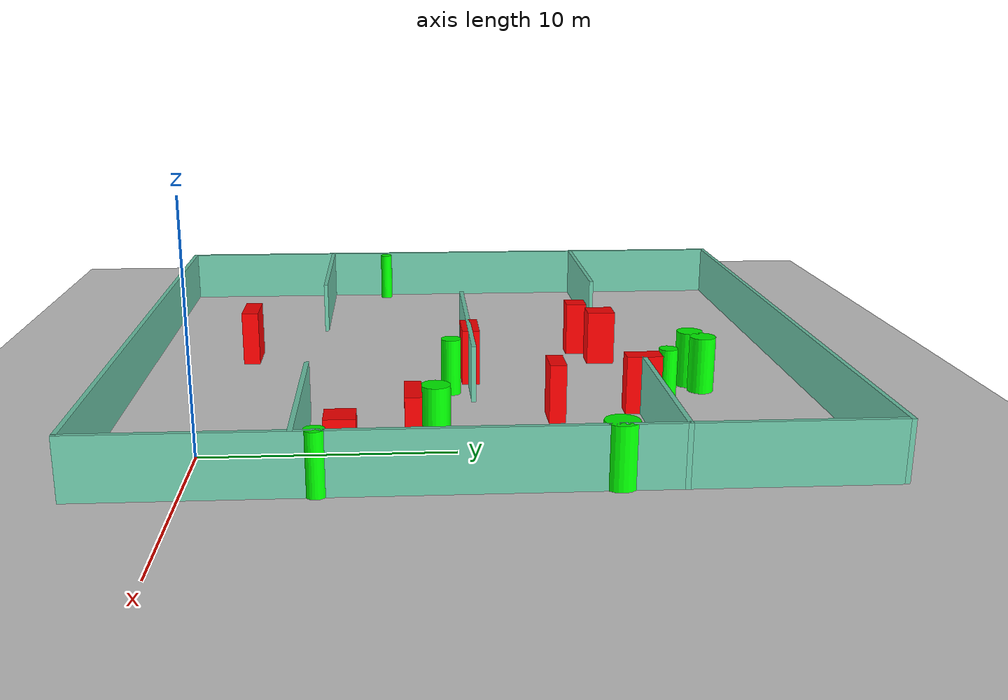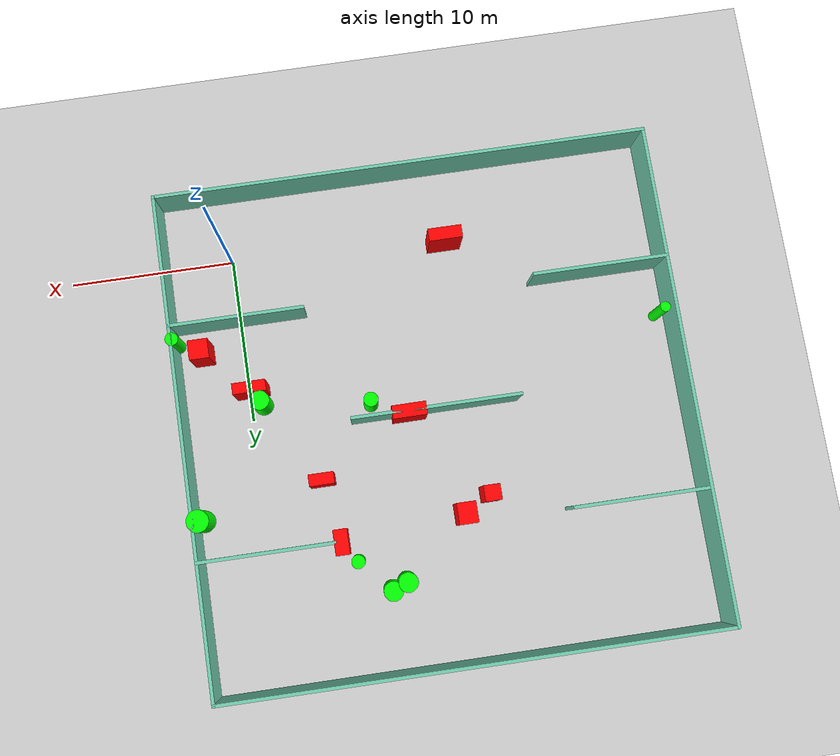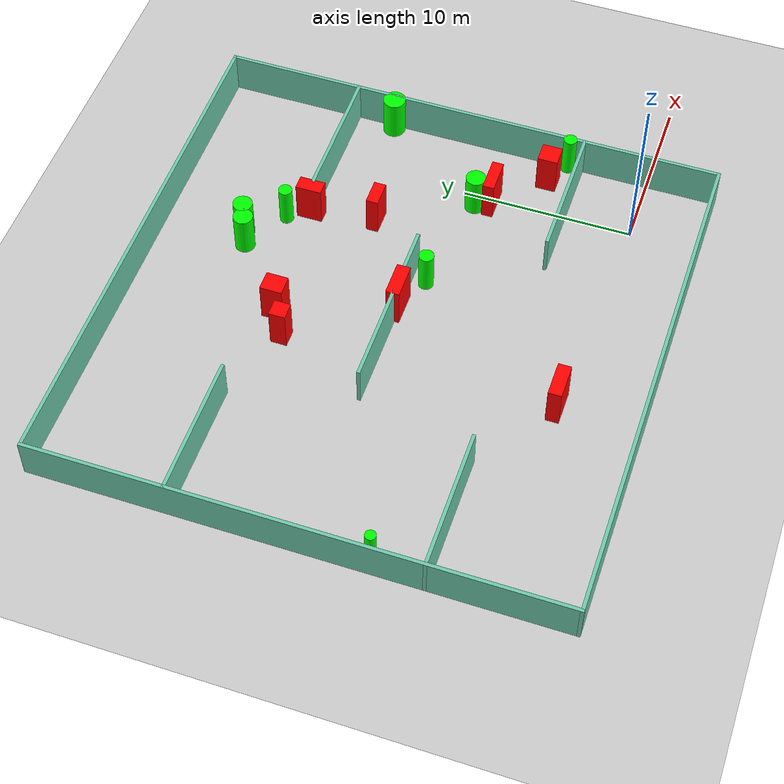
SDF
<sdf version="1.7">
 <world name="default">
  <light name="sun" type="directional">
   <pose>0 0 10 0 -0 0</pose>
   <diffuse>0.8 0.8 0.8 1</diffuse>
   <specular>0.2 0.2 0.2 1</specular>
   <attenuation>
    <range>1000</range>
    <constant>0.9</constant>
    <linear>0.01</linear>
    <quadratic>0.001</quadratic>
   </attenuation>
   <direction>-0.5 0.1 -0.9</direction>
   <spot><inner_angle>0</inner_angle><outer_angle>0</outer_angle><falloff>0</falloff></spot>
  </light>
  <model name="ground_plane">
   <static>1</static>
   <link name="link">
    <collision name="collision">
     <geometry><plane><normal>0 0 1</normal><size>100 100</size></plane></geometry>
     <surface>
      <contact><collide_bitmask>65535</collide_bitmask></contact>
      <friction><ode><mu>100</mu><mu2>50</mu2></ode></friction>
     </surface>
    </collision>
    <visual name="visual">
     <cast_shadows>0</cast_shadows>
     <geometry><plane><normal>0 0 1</normal><size>100 100</size></plane></geometry>
     <material>
      <script><uri>file://media/materials/scripts/gazebo.material</uri><name>Gazebo/Grey</name></script>
     </material>
    </visual>
   </link>
  </model>
  <gravity>0 0 -9.8</gravity>
  <magnetic_field>6e-06 2.3e-05 -4.2e-05</magnetic_field>
  <atmosphere type="adiabatic"/>
  <physics type="ode">
   <max_step_size>0.001</max_step_size>
   <real_time_factor>1</real_time_factor>
   <real_time_update_rate>1000</real_time_update_rate>
  </physics>
  <scene><ambient>0.4 0.4 0.4 1</ambient><background>0.7 0.7 0.7 1</background><shadows>1</shadows></scene>
  <spherical_coordinates>
   <surface_model>EARTH_WGS84</surface_model>
   <latitude_deg>0</latitude_deg>
   <longitude_deg>0</longitude_deg>
   <elevation>0</elevation>
   <heading_deg>0</heading_deg>
  </spherical_coordinates>
  <model name="my_base_walls">
   <link name="Wall_10">
    <collision name="Wall_10_Collision">
     <geometry><box><size>8.2 0.2 2.5</size></box></geometry>
     <pose>0 0 1.25 0 -0 0</pose>
    </collision>
    <visual name="Wall_10_Visual">
     <pose>0 0 1.25 0 -0 0</pose>
     <geometry><box><size>8.2 0.2 2.5</size></box></geometry>
     <material>
      <script><uri>file://media/materials/scripts/gazebo.material</uri><name>Gazebo/Grey</name></script>
      <ambient>0.435294 0.796078 0.67451 1</ambient>
     </material>
     <meta><layer>0</layer></meta>
    </visual>
    <pose>-11 -7 0 0 -0 0</pose>
   </link>
   <link name="Wall_12">
    <collision name="Wall_12_Collision">
     <geometry><box><size>8.2 0.2 2.5</size></box></geometry>
     <pose>0 0 1.25 0 -0 0</pose>
    </collision>
    <visual name="Wall_12_Visual">
     <pose>0 0 1.25 0 -0 0</pose>
     <geometry><box><size>8.2 0.2 2.5</size></box></geometry>
     <material>
      <script><uri>file://media/materials/scripts/gazebo.material</uri><name>Gazebo/Grey</name></script>
      <ambient>0.435294 0.796078 0.67451 1</ambient>
     </material>
     <meta><layer>0</layer></meta>
    </visual>
    <pose>-11 7 0 0 -0 0</pose>
   </link>
   <link name="Wall_14">
    <collision name="Wall_14_Collision">
     <geometry><box><size>8.2 0.2 2.5</size></box></geometry>
     <pose>0 0 1.25 0 -0 0</pose>
    </collision>
    <visual name="Wall_14_Visual">
     <pose>0 0 1.25 0 -0 0</pose>
     <geometry><box><size>8.2 0.2 2.5</size></box></geometry>
     <material>
      <script><uri>file://media/materials/scripts/gazebo.material</uri><name>Gazebo/Grey</name></script>
      <ambient>0.435294 0.796078 0.67451 1</ambient>
     </material>
     <meta><layer>0</layer></meta>
    </visual>
    <pose>11 7 0 0 -0 3.14159</pose>
   </link>
   <link name="Wall_16">
    <collision name="Wall_16_Collision">
     <geometry><box><size>10.2 0.2 2.5</size></box></geometry>
     <pose>0 0 1.25 0 -0 0</pose>
    </collision>
    <visual name="Wall_16_Visual">
     <pose>0 0 1.25 0 -0 0</pose>
     <geometry><box><size>10.2 0.2 2.5</size></box></geometry>
     <material>
      <script><uri>file://media/materials/scripts/gazebo.material</uri><name>Gazebo/Grey</name></script>
      <ambient>0.435294 0.796078 0.67451 1</ambient>
     </material>
     <meta><layer>0</layer></meta>
    </visual>
    <pose>0 0 0 0 -0 3.14159</pose>
   </link>
   <link name="Wall_2">
    <collision name="Wall_2_Collision">
     <geometry><box><size>30.2 0.2 2.5</size></box></geometry>
     <pose>0 0 1.25 0 -0 0</pose>
    </collision>
    <visual name="Wall_2_Visual">
     <pose>0 0 1.25 0 -0 0</pose>
     <geometry><box><size>30.2 0.2 2.5</size></box></geometry>
     <material>
      <script><uri>file://media/materials/scripts/gazebo.material</uri><name>Gazebo/Grey</name></script>
      <ambient>0.435294 0.796078 0.67451 1</ambient>
     </material>
     <meta><layer>0</layer></meta>
    </visual>
    <pose>0 -15 0 0 -0 3.14159</pose>
   </link>
   <link name="Wall_3">
    <collision name="Wall_3_Collision">
     <geometry><box><size>30.2 0.2 2.5</size></box></geometry>
     <pose>0 0 1.25 0 -0 0</pose>
    </collision>
    <visual name="Wall_3_Visual">
     <pose>0 0 1.25 0 -0 0</pose>
     <geometry><box><size>30.2 0.2 2.5</size></box></geometry>
     <material>
      <script><uri>file://media/materials/scripts/gazebo.material</uri><name>Gazebo/Grey</name></script>
      <ambient>0.435294 0.796078 0.67451 1</ambient>
     </material>
     <meta><layer>0</layer></meta>
    </visual>
    <pose>-15 0 0 0 -0 1.5708</pose>
   </link>
   <link name="Wall_4">
    <collision name="Wall_4_Collision">
     <geometry><box><size>30.2 0.2 2.5</size></box></geometry>
     <pose>0 0 1.25 0 -0 0</pose>
    </collision>
    <visual name="Wall_4_Visual">
     <pose>0 0 1.25 0 -0 0</pose>
     <geometry><box><size>30.2 0.2 2.5</size></box></geometry>
     <material>
      <script><uri>file://media/materials/scripts/gazebo.material</uri><name>Gazebo/Grey</name></script>
      <ambient>0.435294 0.796078 0.67451 1</ambient>
     </material>
     <meta><layer>0</layer></meta>
    </visual>
    <pose>0 15 0 0 -0 0</pose>
   </link>
   <link name="Wall_6">
    <collision name="Wall_6_Collision">
     <geometry><box><size>30.2 0.2 2.5</size></box></geometry>
     <pose>0 0 1.25 0 -0 0</pose>
    </collision>
    <visual name="Wall_6_Visual">
     <pose>0 0 1.25 0 -0 0</pose>
     <geometry><box><size>30.2 0.2 2.5</size></box></geometry>
     <material>
      <script><uri>file://media/materials/scripts/gazebo.material</uri><name>Gazebo/Grey</name></script>
      <ambient>0.435294 0.796078 0.67451 1</ambient>
     </material>
     <meta><layer>0</layer></meta>
    </visual>
    <pose>15 0 0 0 -0 1.5708</pose>
   </link>
   <link name="Wall_8">
    <collision name="Wall_8_Collision">
     <geometry><box><size>8.2 0.2 2.5</size></box></geometry>
     <pose>0 0 1.25 0 -0 0</pose>
    </collision>
    <visual name="Wall_8_Visual">
     <pose>0 0 1.25 0 -0 0</pose>
     <geometry><box><size>8.2 0.2 2.5</size></box></geometry>
     <material>
      <script><uri>file://media/materials/scripts/gazebo.material</uri><name>Gazebo/Grey</name></script>
      <ambient>0.435294 0.796078 0.67451 1</ambient>
     </material>
     <meta><layer>0</layer></meta>
    </visual>
    <pose>11 -7 0 0 -0 3.14159</pose>
   </link>
   <static>1</static>
   <pose>-11 11 0 0 -0 0</pose>
  </model>
  <model name="cylinder1">
   <static>1</static>
   <link name="link">
    <inertial>
     <mass>1</mass>
     <inertia><ixx>0.5</ixx><ixy>0</ixy><ixz>0</ixz><iyy>0.5</iyy><iyz>0</iyz><izz>1</izz></inertia>
    </inertial>
    <collision name="collision">
     <geometry><cylinder><radius>0.5727420548945166</radius><length>2.5</length></cylinder></geometry>
    </collision>
    <visual name="visual">
     <geometry><cylinder><radius>0.5727420548945166</radius><length>2.5</length></cylinder></geometry>
     <material>
      <ambient>0 1 0 1</ambient>
      <diffuse>0 1 0 1</diffuse>
      <specular>0.1 0.1 0.1 1</specular>
      <emissive>0 0 0 0</emissive>
     </material>
    </visual>
   </link>
   <pose>-6.943790081805105 21.201189818320227 1.25 0 0 0</pose>
  </model>
  <model name="cylinder2">
   <static>1</static>
   <link name="link">
    <inertial>
     <mass>1</mass>
     <inertia><ixx>0.5</ixx><ixy>0</ixy><ixz>0</ixz><iyy>0.5</iyy><iyz>0</iyz><izz>1</izz></inertia>
    </inertial>
    <collision name="collision">
     <geometry><cylinder><radius>0.3079951399885495</radius><length>2.5</length></cylinder></geometry>
    </collision>
    <visual name="visual">
     <geometry><cylinder><radius>0.3079951399885495</radius><length>2.5</length></cylinder></geometry>
     <material>
      <ambient>0 1 0 1</ambient>
      <diffuse>0 1 0 1</diffuse>
      <specular>0.1 0.1 0.1 1</specular>
      <emissive>0 0 0 0</emissive>
     </material>
    </visual>
   </link>
   <pose>-25.322887637222827 7.103625627738392 1.25 0 0 0</pose>
  </model>
  <model name="cylinder3">
   <static>1</static>
   <link name="link">
    <inertial>
     <mass>1</mass>
     <inertia><ixx>0.5</ixx><ixy>0</ixy><ixz>0</ixz><iyy>0.5</iyy><iyz>0</iyz><izz>1</izz></inertia>
    </inertial>
    <collision name="collision">
     <geometry><cylinder><radius>0.43592483757378986</radius><length>2.5</length></cylinder></geometry>
    </collision>
    <visual name="visual">
     <geometry><cylinder><radius>0.43592483757378986</radius><length>2.5</length></cylinder></geometry>
     <material>
      <ambient>0 1 0 1</ambient>
      <diffuse>0 1 0 1</diffuse>
      <specular>0.1 0.1 0.1 1</specular>
      <emissive>0 0 0 0</emissive>
     </material>
    </visual>
   </link>
   <pose>-7.240205649736467 10.076082905791338 1.25 0 0 0</pose>
  </model>
  <model name="cylinder4">
   <static>1</static>
   <link name="link">
    <inertial>
     <mass>1</mass>
     <inertia><ixx>0.5</ixx><ixy>0</ixy><ixz>0</ixz><iyy>0.5</iyy><iyz>0</iyz><izz>1</izz></inertia>
    </inertial>
    <collision name="collision">
     <geometry><cylinder><radius>0.6653747920859578</radius><length>2.5</length></cylinder></geometry>
    </collision>
    <visual name="visual">
     <geometry><cylinder><radius>0.6653747920859578</radius><length>2.5</length></cylinder></geometry>
     <material>
      <ambient>0 1 0 1</ambient>
      <diffuse>0 1 0 1</diffuse>
      <specular>0.1 0.1 0.1 1</specular>
      <emissive>0 0 0 0</emissive>
     </material>
    </visual>
   </link>
   <pose>3.655220060047789 15.648036927315964 1.25 0 0 0</pose>
  </model>
  <model name="cylinder5">
   <static>1</static>
   <link name="link">
    <inertial>
     <mass>1</mass>
     <inertia><ixx>0.5</ixx><ixy>0</ixy><ixz>0</ixz><iyy>0.5</iyy><iyz>0</iyz><izz>1</izz></inertia>
    </inertial>
    <collision name="collision">
     <geometry><cylinder><radius>0.3931641595358518</radius><length>2.5</length></cylinder></geometry>
    </collision>
    <visual name="visual">
     <geometry><cylinder><radius>0.3931641595358518</radius><length>2.5</length></cylinder></geometry>
     <material>
      <ambient>0 1 0 1</ambient>
      <diffuse>0 1 0 1</diffuse>
      <specular>0.1 0.1 0.1 1</specular>
      <emissive>0 0 0 0</emissive>
     </material>
    </visual>
   </link>
   <pose>3.899769670948821 4.8260238907514115 1.25 0 0 0</pose>
  </model>
  <model name="cylinder6">
   <static>1</static>
   <link name="link">
    <inertial>
     <mass>1</mass>
     <inertia><ixx>0.5</ixx><ixy>0</ixy><ixz>0</ixz><iyy>0.5</iyy><iyz>0</iyz><izz>1</izz></inertia>
    </inertial>
    <collision name="collision">
     <geometry><cylinder><radius>0.5795052914556256</radius><length>2.5</length></cylinder></geometry>
    </collision>
    <visual name="visual">
     <geometry><cylinder><radius>0.5795052914556256</radius><length>2.5</length></cylinder></geometry>
     <material>
      <ambient>0 1 0 1</ambient>
      <diffuse>0 1 0 1</diffuse>
      <specular>0.1 0.1 0.1 1</specular>
      <emissive>0 0 0 0</emissive>
     </material>
    </visual>
   </link>
   <pose>-0.7783206058522225 9.189408164243744 1.25 0 0 0</pose>
  </model>
  <model name="cylinder7">
   <static>1</static>
   <link name="link">
    <inertial>
     <mass>1</mass>
     <inertia><ixx>0.5</ixx><ixy>0</ixy><ixz>0</ixz><iyy>0.5</iyy><iyz>0</iyz><izz>1</izz></inertia>
    </inertial>
    <collision name="collision">
     <geometry><cylinder><radius>0.5758224819653165</radius><length>2.5</length></cylinder></geometry>
    </collision>
    <visual name="visual">
     <geometry><cylinder><radius>0.5758224819653165</radius><length>2.5</length></cylinder></geometry>
     <material>
      <ambient>0 1 0 1</ambient>
      <diffuse>0 1 0 1</diffuse>
      <specular>0.1 0.1 0.1 1</specular>
      <emissive>0 0 0 0</emissive>
     </material>
    </visual>
   </link>
   <pose>-7.8451082988576495 20.83002349523947 1.25 0 0 0</pose>
  </model>
  <model name="cylinder8">
   <static>1</static>
   <link name="link">
    <inertial>
     <mass>1</mass>
     <inertia><ixx>0.5</ixx><ixy>0</ixy><ixz>0</ixz><iyy>0.5</iyy><iyz>0</iyz><izz>1</izz></inertia>
    </inertial>
    <collision name="collision">
     <geometry><cylinder><radius>0.40204725370599004</radius><length>2.5</length></cylinder></geometry>
    </collision>
    <visual name="visual">
     <geometry><cylinder><radius>0.40204725370599004</radius><length>2.5</length></cylinder></geometry>
     <material>
      <ambient>0 1 0 1</ambient>
      <diffuse>0 1 0 1</diffuse>
      <specular>0.1 0.1 0.1 1</specular>
      <emissive>0 0 0 0</emissive>
     </material>
    </visual>
   </link>
   <pose>-5.181692143995072 19.272442461324236 1.25 0 0 0</pose>
  </model>
  <model name="box1">
   <static>1</static>
   <link name="link">
    <inertial>
     <mass>1</mass>
     <inertia><ixx>0.083</ixx><ixy>0</ixy><ixz>0</ixz><iyy>0.083</iyy><iyz>0</iyz><izz>0.083</izz></inertia>
    </inertial>
    <collision name="collision">
     <geometry><box><size>0.8345898114949615 1.5118923400737625 2.5</size></box></geometry>
    </collision>
    <visual name="visual">
     <geometry><box><size>0.8345898114949615 1.5118923400737625 2.5</size></box></geometry>
     <material>
      <ambient>1 0 0 1</ambient>
      <diffuse>1 0 0 1</diffuse>
      <specular>0.1 0.1 0.1 1</specular>
      <emissive>0 0 0 0</emissive>
     </material>
    </visual>
    <sensor name="my_contact" type="contact">
     <contact><collision>box_collision</collision><topic>__default_topic__</topic></contact>
    </sensor>
   </link>
   <pose>-4.370893300823095 18.0267804095602 1.25 0 0 0</pose>
  </model>
  <model name="box2">
   <static>1</static>
   <link name="link">
    <inertial>
     <mass>1</mass>
     <inertia><ixx>0.083</ixx><ixy>0</ixy><ixz>0</ixz><iyy>0.083</iyy><iyz>0</iyz><izz>0.083</izz></inertia>
    </inertial>
    <collision name="collision">
     <geometry><box><size>1.143735985762231 1.27816471959083 2.5</size></box></geometry>
    </collision>
    <visual name="visual">
     <geometry><box><size>1.143735985762231 1.27816471959083 2.5</size></box></geometry>
     <material>
      <ambient>1 0 0 1</ambient>
      <diffuse>1 0 0 1</diffuse>
      <specular>0.1 0.1 0.1 1</specular>
      <emissive>0 0 0 0</emissive>
     </material>
    </visual>
    <sensor name="my_contact" type="contact">
     <contact><collision>box_collision</collision><topic>__default_topic__</topic></contact>
    </sensor>
   </link>
   <pose>-11.810579797901491 17.418293887221537 1.25 0 0 0</pose>
  </model>
  <model name="box3">
   <static>1</static>
   <link name="link">
    <inertial>
     <mass>1</mass>
     <inertia><ixx>0.083</ixx><ixy>0</ixy><ixz>0</ixz><iyy>0.083</iyy><iyz>0</iyz><izz>0.083</izz></inertia>
    </inertial>
    <collision name="collision">
     <geometry><box><size>2.0398895610238186 0.7942371164434174 2.5</size></box></geometry>
    </collision>
    <visual name="visual">
     <geometry><box><size>2.0398895610238186 0.7942371164434174 2.5</size></box></geometry>
     <material>
      <ambient>1 0 0 1</ambient>
      <diffuse>1 0 0 1</diffuse>
      <specular>0.1 0.1 0.1 1</specular>
      <emissive>0 0 0 0</emissive>
     </material>
    </visual>
    <sensor name="my_contact" type="contact">
     <contact><collision>box_collision</collision><topic>__default_topic__</topic></contact>
    </sensor>
   </link>
   <pose>-9.381598329070382 11.022788379473107 1.25 0 0 0</pose>
  </model>
  <model name="box4">
   <static>1</static>
   <link name="link">
    <inertial>
     <mass>1</mass>
     <inertia><ixx>0.083</ixx><ixy>0</ixy><ixz>0</ixz><iyy>0.083</iyy><iyz>0</iyz><izz>0.083</izz></inertia>
    </inertial>
    <collision name="collision">
     <geometry><box><size>1.9882928289258477 0.6684098153897341 2.5</size></box></geometry>
    </collision>
    <visual name="visual">
     <geometry><box><size>1.9882928289258477 0.6684098153897341 2.5</size></box></geometry>
     <material>
      <ambient>1 0 0 1</ambient>
      <diffuse>1 0 0 1</diffuse>
      <specular>0.1 0.1 0.1 1</specular>
      <emissive>0 0 0 0</emissive>
     </material>
    </visual>
    <sensor name="my_contact" type="contact">
     <contact><collision>box_collision</collision><topic>__default_topic__</topic></contact>
    </sensor>
   </link>
   <pose>-0.25504670129457807 8.309269261541406 1.25 0 0 0</pose>
  </model>
  <model name="box5">
   <static>1</static>
   <link name="link">
    <inertial>
     <mass>1</mass>
     <inertia><ixx>0.083</ixx><ixy>0</ixy><ixz>0</ixz><iyy>0.083</iyy><iyz>0</iyz><izz>0.083</izz></inertia>
    </inertial>
    <collision name="collision">
     <geometry><box><size>0.9846285739478453 0.9520333912403595 2.5</size></box></geometry>
    </collision>
    <visual name="visual">
     <geometry><box><size>0.9846285739478453 0.9520333912403595 2.5</size></box></geometry>
     <material>
      <ambient>1 0 0 1</ambient>
      <diffuse>1 0 0 1</diffuse>
      <specular>0.1 0.1 0.1 1</specular>
      <emissive>0 0 0 0</emissive>
     </material>
    </visual>
    <sensor name="my_contact" type="contact">
     <contact><collision>box_collision</collision><topic>__default_topic__</topic></contact>
    </sensor>
   </link>
   <pose>-13.426972292683002 16.472564837623903 1.25 0 0 0</pose>
  </model>
  <model name="box6">
   <static>1</static>
   <link name="link">
    <inertial>
     <mass>1</mass>
     <inertia><ixx>0.083</ixx><ixy>0</ixy><ixz>0</ixz><iyy>0.083</iyy><iyz>0</iyz><izz>0.083</izz></inertia>
    </inertial>
    <collision name="collision">
     <geometry><box><size>2.034235154236494 0.7637654460433843 2.5</size></box></geometry>
    </collision>
    <visual name="visual">
     <geometry><box><size>2.034235154236494 0.7637654460433843 2.5</size></box></geometry>
     <material>
      <ambient>1 0 0 1</ambient>
      <diffuse>1 0 0 1</diffuse>
      <specular>0.1 0.1 0.1 1</specular>
      <emissive>0 0 0 0</emissive>
     </material>
    </visual>
    <sensor name="my_contact" type="contact">
     <contact><collision>box_collision</collision><topic>__default_topic__</topic></contact>
    </sensor>
   </link>
   <pose>-13.096251141430614 0.739844434922257 1.25 0 0 0</pose>
  </model>
  <model name="box7">
   <static>1</static>
   <link name="link">
    <inertial>
     <mass>1</mass>
     <inertia><ixx>0.083</ixx><ixy>0</ixy><ixz>0</ixz><iyy>0.083</iyy><iyz>0</iyz><izz>0.083</izz></inertia>
    </inertial>
    <collision name="collision">
     <geometry><box><size>1.4909784756338786 0.6975543648185669 2.5</size></box></geometry>
    </collision>
    <visual name="visual">
     <geometry><box><size>1.4909784756338786 0.6975543648185669 2.5</size></box></geometry>
     <material>
      <ambient>1 0 0 1</ambient>
      <diffuse>1 0 0 1</diffuse>
      <specular>0.1 0.1 0.1 1</specular>
      <emissive>0 0 0 0</emissive>
     </material>
    </visual>
    <sensor name="my_contact" type="contact">
     <contact><collision>box_collision</collision><topic>__default_topic__</topic></contact>
    </sensor>
   </link>
   <pose>-3.724873809979723 14.268144353700759 1.25 0 0 0</pose>
  </model>
  <model name="box8">
   <static>1</static>
   <link name="link">
    <inertial>
     <mass>1</mass>
     <inertia><ixx>0.083</ixx><ixy>0</ixy><ixz>0</ixz><iyy>0.083</iyy><iyz>0</iyz><izz>0.083</izz></inertia>
    </inertial>
    <collision name="collision">
     <geometry><box><size>1.1887440415604114 1.1786152524653772 2.5</size></box></geometry>
    </collision>
    <visual name="visual">
     <geometry><box><size>1.1887440415604114 1.1786152524653772 2.5</size></box></geometry>
     <material>
      <ambient>1 0 0 1</ambient>
      <diffuse>1 0 0 1</diffuse>
      <specular>0.1 0.1 0.1 1</specular>
      <emissive>0 0 0 0</emissive>
     </material>
    </visual>
    <sensor name="my_contact" type="contact">
     <contact><collision>box_collision</collision><topic>__default_topic__</topic></contact>
    </sensor>
   </link>
   <pose>2.4182111252757323 5.64735452057921 1.25 0 0 0</pose>
  </model>
 </world>
</sdf>
